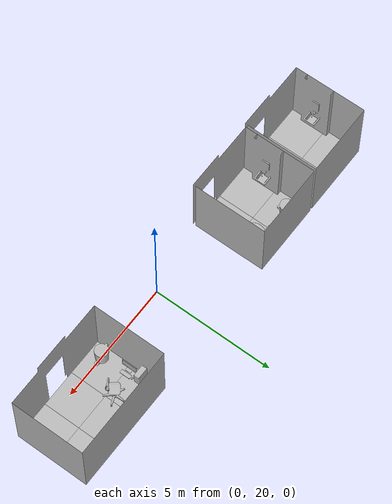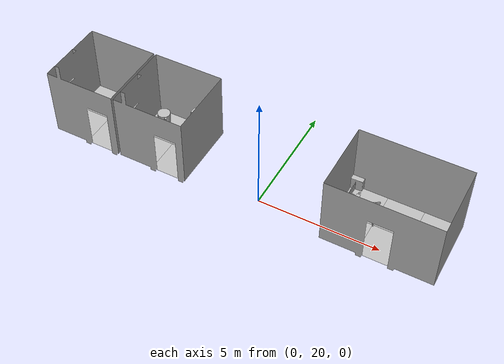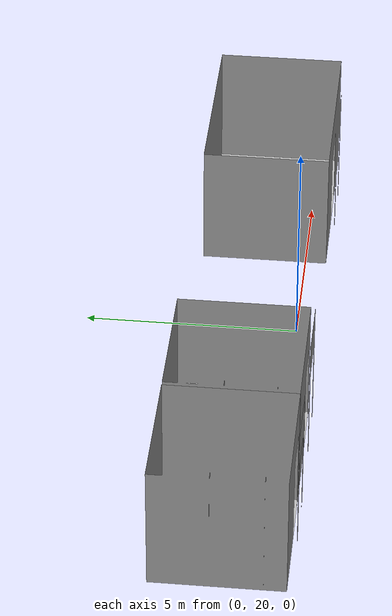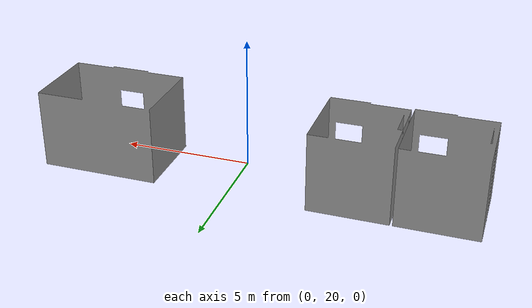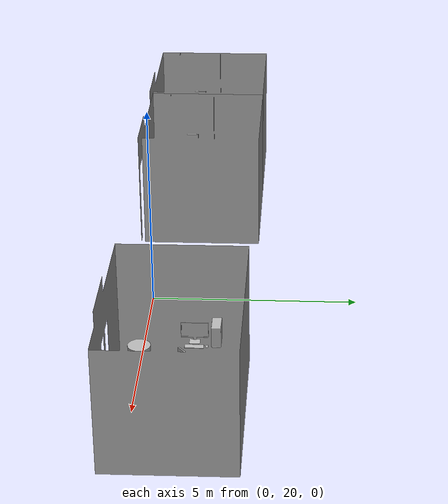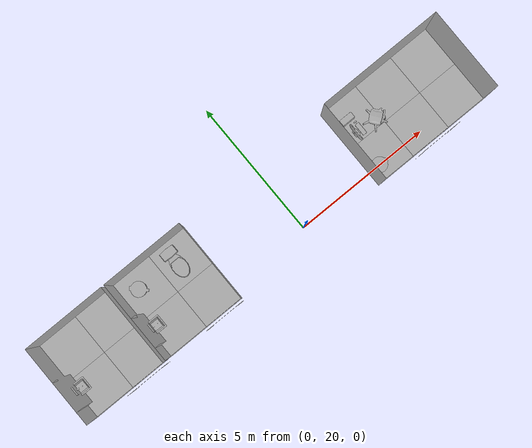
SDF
<sdf version="1.7">
 <world name="default">
  <model name="PublicMeetingRoomE">
   <static>1</static>
   <pose>4.3 19.5 0 0 -0 3.14159</pose>
   <link name="link">
    <collision name="right_of_door">
     <pose>0.63 0.05 1.5 0 -0 0</pose>
     <geometry><box><size>1.74 0.1 3</size></box></geometry>
    </collision>
    <collision name="left_of_door">
     <pose>-2.13 0.05 1.5 0 -0 0</pose>
     <geometry><box><size>1.74 0.1 3</size></box></geometry>
    </collision>
    <collision name="top_of_door">
     <pose>-0.75 0.05 2.55 0 -0 0</pose>
     <geometry><box><size>1.5 0.1 0.9</size></box></geometry>
    </collision>
    <collision name="right">
     <pose>1.55 -1.5 1.5 0 -0 0</pose>
     <geometry><box><size>0.1 3 3</size></box></geometry>
    </collision>
    <collision name="left">
     <pose>-3.05 -1.5 1.5 0 -0 0</pose>
     <geometry><box><size>0.1 3 3</size></box></geometry>
    </collision>
    <collision name="back">
     <pose>-0.75 -3.05 1.5 0 -0 0</pose>
     <geometry><box><size>4.5 0.1 3</size></box></geometry>
    </collision>
    <visual name="visual">
     <geometry>
      <mesh><uri>model://media/meshes/office_small.obj</uri><scale>0.01 0.01 0.01</scale></mesh>
     </geometry>
    </visual>
    <visual name="floor_-1_-1">
     <pose>-1.5 -1.5 0 0 -0 0</pose>
     <geometry><mesh><uri>model://media/meshes/carpet.obj</uri><scale>0.01 0.01 0.01</scale></mesh></geometry>
    </visual>
    <visual name="floor_-1_0">
     <pose>-1.5 0 0 0 -0 0</pose>
     <geometry><mesh><uri>model://media/meshes/carpet.obj</uri><scale>0.01 0.01 0.01</scale></mesh></geometry>
    </visual>
    <visual name="floor_0_-1">
     <pose>0 -1.5 0 0 -0 0</pose>
     <geometry><mesh><uri>model://media/meshes/carpet.obj</uri><scale>0.01 0.01 0.01</scale></mesh></geometry>
    </visual>
    <visual name="floor_0_0">
     <geometry><mesh><uri>model://media/meshes/carpet.obj</uri><scale>0.01 0.01 0.01</scale></mesh></geometry>
    </visual>
    <visual name="floor_1_-1">
     <pose>1.5 -1.5 0 0 -0 0</pose>
     <geometry><mesh><uri>model://media/meshes/carpet.obj</uri><scale>0.01 0.01 0.01</scale></mesh></geometry>
    </visual>
    <visual name="floor_1_0">
     <pose>1.5 0 0 0 -0 0</pose>
     <geometry><mesh><uri>model://media/meshes/carpet.obj</uri><scale>0.01 0.01 0.01</scale></mesh></geometry>
    </visual>
   </link>
   <model name="corner_1">
    <static>1</static>
    <pose>1.5 -3 0 0 0 -1.5708</pose>
    <link name="link">
     <collision name="collision_x">
      <pose>-0.925 -0.375 0.38 0 -0 0</pose>
      <geometry><box><size>1.85 0.75 0.76</size></box></geometry>
     </collision>
     <collision name="collision_y">
      <pose>-0.375 -0.925 0.38 0 -0 0</pose>
      <geometry><box><size>0.75 1.85 0.76</size></box></geometry>
     </collision>
    </link>
    <frame name="computer::__model__" attached_to="computer::monitor">
     <pose relative_to="__model__">-1.22 -0.45 0.76 0 -0 0</pose>
    </frame>
    <static>1</static>
    <link name="computer::monitor">
     <visual name="visual">
      <geometry>
       <mesh><uri>model://computer/meshes/computer_monitor.obj</uri><scale>0.01 0.01 0.01</scale></mesh>
      </geometry>
     </visual>
     <pose relative_to="computer::__model__">0 0 0 0 -0 0</pose>
    </link>
    <link name="computer::tower">
     <pose relative_to="computer::__model__">0.5 0 0 0 -0 0</pose>
     <visual name="visual">
      <geometry>
       <mesh><uri>model://computer/meshes/computer_tower.obj</uri><scale>0.01 0.01 0.01</scale></mesh>
      </geometry>
     </visual>
    </link>
    <frame name="office_chair::__model__" attached_to="office_chair::link">
     <pose relative_to="__model__">-1.23445 -1.29502 0 0 -0 2.23127</pose>
    </frame>
    <static>1</static>
    <link name="office_chair::link">
     <collision name="collision">
      <pose>0.001581 0.000308 0.569888 0 -0 0</pose>
      <geometry><cylinder><radius>0.43</radius><length>1.14</length></cylinder></geometry>
     </collision>
     <visual name="visual">
      <geometry>
       <mesh><uri>model://office_chair/meshes/office_chair.dae</uri><scale>1.4 1.4 1.4</scale></mesh>
      </geometry>
     </visual>
     <pose relative_to="office_chair::__model__">0 0 0 0 -0 0</pose>
    </link>
   </model>
   <frame name="wastebasket::__model__" attached_to="wastebasket::link">
    <pose relative_to="__model__">1.1 -0.5 0 0 -0 3.14159</pose>
   </frame>
   <static>1</static>
   <link name="wastebasket::link">
    <pose relative_to="wastebasket::__model__">0 0 0 0 -0 1.5708</pose>
    <collision name="collision">
     <pose>0.001581 0.000308 0.312969 0 -0 0</pose>
     <geometry><cylinder><radius>0.27</radius><length>0.63</length></cylinder></geometry>
    </collision>
    <visual name="visual">
     <geometry>
      <mesh><uri>model://wastebasket/meshes/wastebasket.dae</uri><scale>1.4 1.4 1.4</scale></mesh>
     </geometry>
    </visual>
   </link>
  </model>
  <model name="PrivateBathroomA">
   <static>1</static>
   <pose>-4.5 19.5 0 0 -0 3.14159</pose>
   <link name="link">
    <collision name="right_of_door">
     <pose>0.63 0.05 1.5 0 -0 0</pose>
     <geometry><box><size>1.74 0.1 3</size></box></geometry>
    </collision>
    <collision name="left_of_door">
     <pose>-1.38 0.05 1.5 0 -0 0</pose>
     <geometry><box><size>0.24 0.1 3</size></box></geometry>
    </collision>
    <collision name="top_of_door">
     <pose>-0.75 0.05 2.55 0 -0 0</pose>
     <geometry><box><size>1.5 0.1 0.9</size></box></geometry>
    </collision>
    <collision name="right">
     <pose>1.55 -1.5 1.5 0 -0 0</pose>
     <geometry><box><size>0.1 3 3</size></box></geometry>
    </collision>
    <collision name="left">
     <pose>-1.55 -1.5 1.5 0 -0 0</pose>
     <geometry><box><size>0.1 3 3</size></box></geometry>
    </collision>
    <collision name="back">
     <pose>0 -3.05 1.5 0 -0 0</pose>
     <geometry><box><size>3 0.1 3</size></box></geometry>
    </collision>
    <visual name="visual">
     <geometry><mesh><uri>model://media/meshes/bathroom.obj</uri><scale>0.01 0.01 0.01</scale></mesh></geometry>
    </visual>
    <visual name="floor_0_-1">
     <pose>0 -1.5 0 0 -0 0</pose>
     <geometry><mesh><uri>model://media/meshes/tile.obj</uri><scale>0.01 0.01 0.01</scale></mesh></geometry>
    </visual>
    <visual name="floor_0_0">
     <geometry><mesh><uri>model://media/meshes/tile.obj</uri><scale>0.01 0.01 0.01</scale></mesh></geometry>
    </visual>
    <visual name="floor_1_-1">
     <pose>1.5 -1.5 0 0 -0 0</pose>
     <geometry><mesh><uri>model://media/meshes/tile.obj</uri><scale>0.01 0.01 0.01</scale></mesh></geometry>
    </visual>
    <visual name="floor_1_0">
     <pose>1.5 0 0 0 -0 0</pose>
     <geometry><mesh><uri>model://media/meshes/tile.obj</uri><scale>0.01 0.01 0.01</scale></mesh></geometry>
    </visual>
   </link>
   <frame name="toilet::__model__" attached_to="toilet::link">
    <pose relative_to="__model__">-0.6 -2.1 0 0 -0 3.14159</pose>
   </frame>
   <static>1</static>
   <link name="toilet::link">
    <collision name="collision">
     <pose>-0.003873 0.134001 0.582097 0 -0 0</pose>
     <geometry><box><size>0.551631 1.09406 1.18218</size></box></geometry>
    </collision>
    <visual name="visual">
     <geometry><mesh><uri>model://toilet/meshes/toilet.dae</uri><scale>1.4 1.4 1.4</scale></mesh></geometry>
    </visual>
    <pose relative_to="toilet::__model__">0 0 0 0 -0 0</pose>
   </link>
   <frame name="wastebasket::__model__" attached_to="wastebasket::link">
    <pose relative_to="__model__">0.9 -2.35 0 0 0 -0.785398</pose>
   </frame>
   <static>1</static>
   <link name="wastebasket::link">
    <pose relative_to="wastebasket::__model__">0 0 0 0 -0 1.5708</pose>
    <collision name="collision">
     <pose>0.001581 0.000308 0.312969 0 -0 0</pose>
     <geometry><cylinder><radius>0.27</radius><length>0.63</length></cylinder></geometry>
    </collision>
    <visual name="visual">
     <geometry>
      <mesh><uri>model://wastebasket/meshes/wastebasket.dae</uri><scale>1.4 1.4 1.4</scale></mesh>
     </geometry>
    </visual>
   </link>
  </model>
  <model name="PrivateBathroomB">
   <static>1</static>
   <pose>-7.6 19.5 0 0 -0 3.14159</pose>
   <link name="link">
    <collision name="box_collision">
     <pose>0 -1.5 1.5 0 -0 0</pose>
     <geometry><box><size>3 3 3</size></box></geometry>
    </collision>
    <visual name="visual">
     <geometry><mesh><uri>model://media/meshes/bathroom.obj</uri><scale>0.01 0.01 0.01</scale></mesh></geometry>
    </visual>
    <visual name="floor_0_-1">
     <pose>0 -1.5 0 0 -0 0</pose>
     <geometry><mesh><uri>model://media/meshes/tile.obj</uri><scale>0.01 0.01 0.01</scale></mesh></geometry>
    </visual>
    <visual name="floor_0_0">
     <geometry><mesh><uri>model://media/meshes/tile.obj</uri><scale>0.01 0.01 0.01</scale></mesh></geometry>
    </visual>
    <visual name="floor_1_-1">
     <pose>1.5 -1.5 0 0 -0 0</pose>
     <geometry><mesh><uri>model://media/meshes/tile.obj</uri><scale>0.01 0.01 0.01</scale></mesh></geometry>
    </visual>
    <visual name="floor_1_0">
     <pose>1.5 0 0 0 -0 0</pose>
     <geometry><mesh><uri>model://media/meshes/tile.obj</uri><scale>0.01 0.01 0.01</scale></mesh></geometry>
    </visual>
   </link>
  </model>
 </world>
</sdf>
